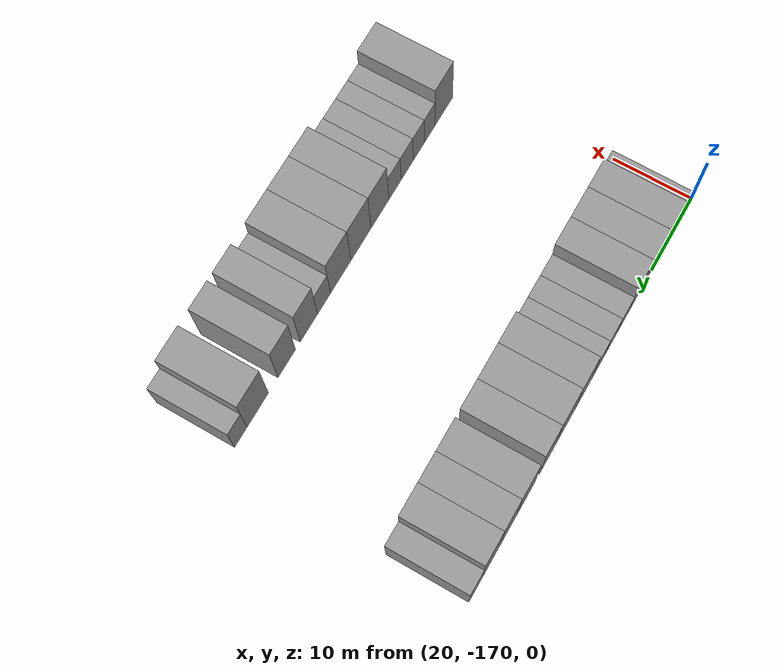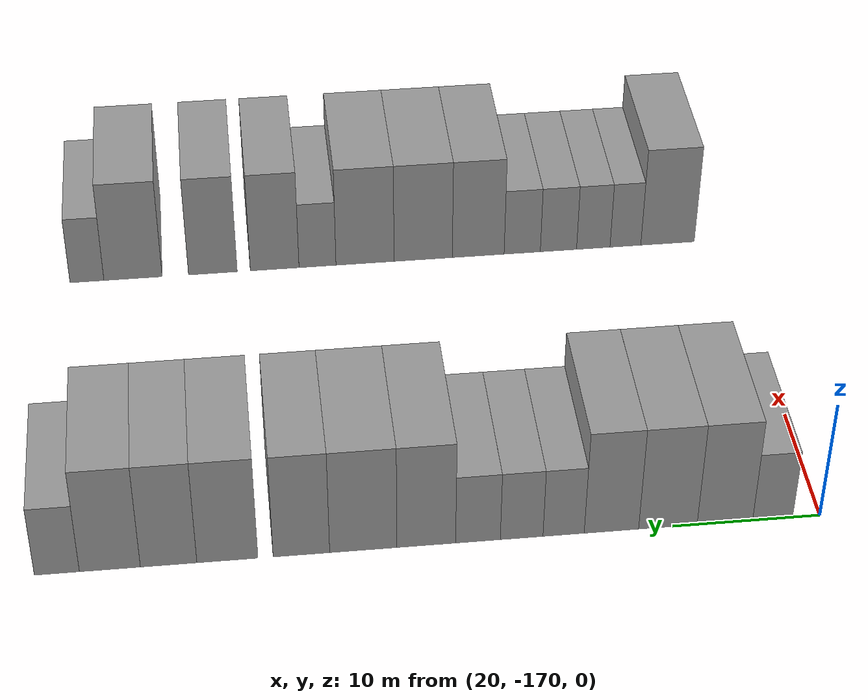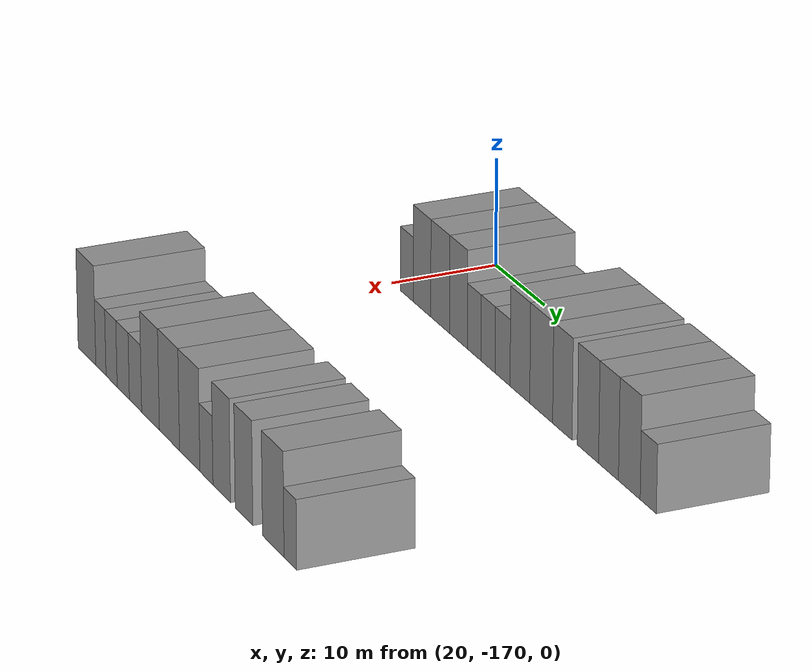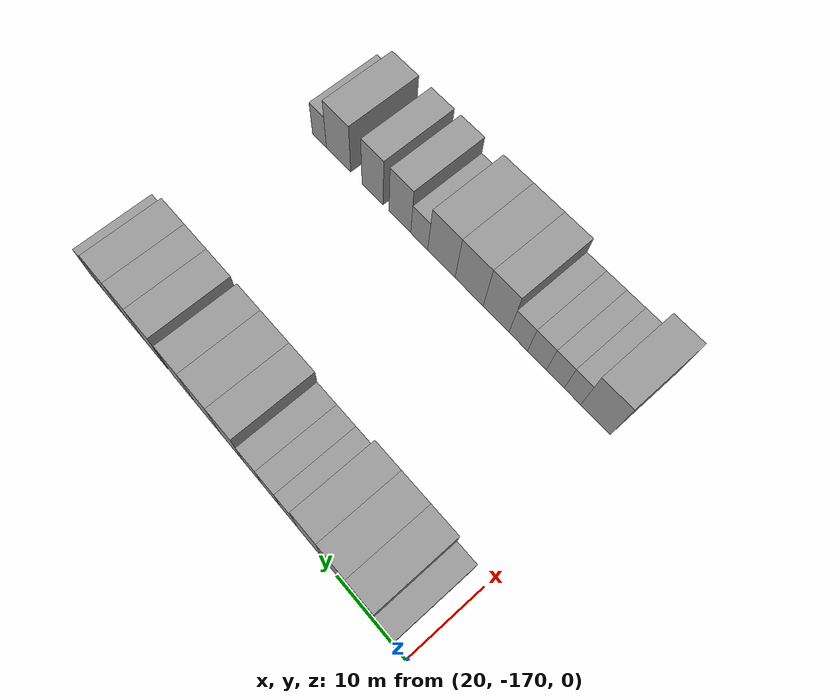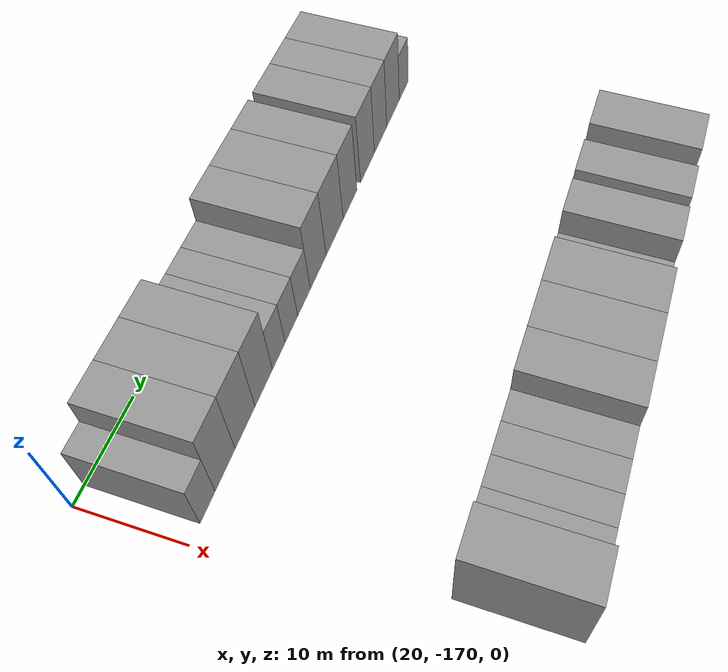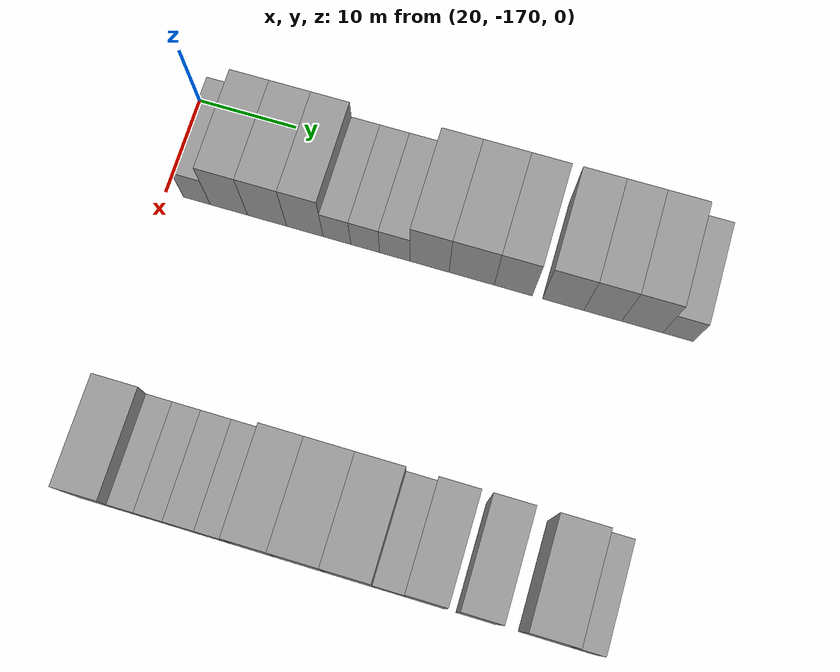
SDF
<sdf version="1.6">
 <world name="default">
  <model name="building_14">
   <static>1</static>
   <pose>25.0000 -166.7844 0 0.000000 0.000000 0.000000</pose>
   <link name="link">
    <pose>0 0 3.00 0 0 0</pose>
    <collision name="collision"><geometry><box><size>10.0000 2.7257 6.0000</size></box></geometry></collision>
    <visual name="visual">
     <cast_shadows>0</cast_shadows>
     <geometry><box><size>10.0000 2.7257 6.0000</size></box></geometry>
     <material>
      <script>
       <uri>model://grey_wall/materials/scripts</uri>
       <uri>model://grey_wall/materials/textures</uri>
       <name>vrc/grey_wall</name>
      </script>
     </material>
    </visual>
   </link>
  </model>
  <model name="building_15">
   <static>1</static>
   <pose>25.0000 -163.5337 0 0.000000 0.000000 0.000000</pose>
   <link name="link">
    <pose>0 0 4.50 0 0 0</pose>
    <collision name="collision"><geometry><box><size>10.0000 3.7757 9.0000</size></box></geometry></collision>
    <visual name="visual">
     <cast_shadows>0</cast_shadows>
     <geometry><box><size>10.0000 3.7757 9.0000</size></box></geometry>
     <material>
      <script>
       <uri>model://grey_wall/materials/scripts</uri>
       <uri>model://grey_wall/materials/textures</uri>
       <name>vrc/grey_wall</name>
      </script>
     </material>
    </visual>
   </link>
  </model>
  <model name="building_16">
   <static>1</static>
   <pose>25.0000 -159.6657 0 0.000000 0.000000 0.000000</pose>
   <link name="link">
    <pose>0 0 4.50 0 0 0</pose>
    <collision name="collision"><geometry><box><size>10.0000 3.9602 9.0000</size></box></geometry></collision>
    <visual name="visual">
     <cast_shadows>0</cast_shadows>
     <geometry><box><size>10.0000 3.9602 9.0000</size></box></geometry>
     <material>
      <script>
       <uri>model://grey_wall/materials/scripts</uri>
       <uri>model://grey_wall/materials/textures</uri>
       <name>vrc/grey_wall</name>
      </script>
     </material>
    </visual>
   </link>
  </model>
  <model name="building_17">
   <static>1</static>
   <pose>25.0000 -155.8524 0 0.000000 0.000000 0.000000</pose>
   <link name="link">
    <pose>0 0 4.50 0 0 0</pose>
    <collision name="collision"><geometry><box><size>10.0000 3.6663 9.0000</size></box></geometry></collision>
    <visual name="visual">
     <cast_shadows>0</cast_shadows>
     <geometry><box><size>10.0000 3.6663 9.0000</size></box></geometry>
     <material>
      <script>
       <uri>model://grey_wall/materials/scripts</uri>
       <uri>model://grey_wall/materials/textures</uri>
       <name>vrc/grey_wall</name>
      </script>
     </material>
    </visual>
   </link>
  </model>
  <model name="building_18">
   <static>1</static>
   <pose>25.0000 -152.6347 0 0.000000 0.000000 0.000000</pose>
   <link name="link">
    <pose>0 0 3.00 0 0 0</pose>
    <collision name="collision"><geometry><box><size>10.0000 2.7692 6.0000</size></box></geometry></collision>
    <visual name="visual">
     <cast_shadows>0</cast_shadows>
     <geometry><box><size>10.0000 2.7692 6.0000</size></box></geometry>
     <material>
      <script>
       <uri>model://grey_wall/materials/scripts</uri>
       <uri>model://grey_wall/materials/textures</uri>
       <name>vrc/grey_wall</name>
      </script>
     </material>
    </visual>
   </link>
  </model>
  <model name="building_19">
   <static>1</static>
   <pose>25.0000 -149.8208 0 0.000000 0.000000 0.000000</pose>
   <link name="link">
    <pose>0 0 3.00 0 0 0</pose>
    <collision name="collision"><geometry><box><size>10.0000 2.8584 6.0000</size></box></geometry></collision>
    <visual name="visual">
     <cast_shadows>0</cast_shadows>
     <geometry><box><size>10.0000 2.8584 6.0000</size></box></geometry>
     <material>
      <script>
       <uri>model://grey_wall/materials/scripts</uri>
       <uri>model://grey_wall/materials/textures</uri>
       <name>vrc/grey_wall</name>
      </script>
     </material>
    </visual>
   </link>
  </model>
  <model name="building_20">
   <static>1</static>
   <pose>25.0000 -146.8978 0 0.000000 0.000000 0.000000</pose>
   <link name="link">
    <pose>0 0 3.00 0 0 0</pose>
    <collision name="collision"><geometry><box><size>10.0000 2.9875 6.0000</size></box></geometry></collision>
    <visual name="visual">
     <cast_shadows>0</cast_shadows>
     <geometry><box><size>10.0000 2.9875 6.0000</size></box></geometry>
     <material>
      <script>
       <uri>model://grey_wall/materials/scripts</uri>
       <uri>model://grey_wall/materials/textures</uri>
       <name>vrc/grey_wall</name>
      </script>
     </material>
    </visual>
   </link>
  </model>
  <model name="building_21">
   <static>1</static>
   <pose>25.0000 -143.4549 0 0.000000 0.000000 0.000000</pose>
   <link name="link">
    <pose>0 0 4.50 0 0 0</pose>
    <collision name="collision"><geometry><box><size>10.0000 3.8983 9.0000</size></box></geometry></collision>
    <visual name="visual">
     <cast_shadows>0</cast_shadows>
     <geometry><box><size>10.0000 3.8983 9.0000</size></box></geometry>
     <material>
      <script>
       <uri>model://grey_wall/materials/scripts</uri>
       <uri>model://grey_wall/materials/textures</uri>
       <name>vrc/grey_wall</name>
      </script>
     </material>
    </visual>
   </link>
  </model>
  <model name="building_22">
   <static>1</static>
   <pose>25.0000 -139.2806 0 0.000000 0.000000 0.000000</pose>
   <link name="link">
    <pose>0 0 4.50 0 0 0</pose>
    <collision name="collision"><geometry><box><size>10.0000 4.4503 9.0000</size></box></geometry></collision>
    <visual name="visual">
     <cast_shadows>0</cast_shadows>
     <geometry><box><size>10.0000 4.4503 9.0000</size></box></geometry>
     <material>
      <script>
       <uri>model://grey_wall/materials/scripts</uri>
       <uri>model://grey_wall/materials/textures</uri>
       <name>vrc/grey_wall</name>
      </script>
     </material>
    </visual>
   </link>
  </model>
  <model name="building_23">
   <static>1</static>
   <pose>25.0000 -135.1921 0 0.000000 0.000000 0.000000</pose>
   <link name="link">
    <pose>0 0 4.50 0 0 0</pose>
    <collision name="collision"><geometry><box><size>10.0000 3.7267 9.0000</size></box></geometry></collision>
    <visual name="visual">
     <cast_shadows>0</cast_shadows>
     <geometry><box><size>10.0000 3.7267 9.0000</size></box></geometry>
     <material>
      <script>
       <uri>model://grey_wall/materials/scripts</uri>
       <uri>model://grey_wall/materials/textures</uri>
       <name>vrc/grey_wall</name>
      </script>
     </material>
    </visual>
   </link>
  </model>
  <model name="building_24">
   <static>1</static>
   <pose>25.0000 -130.3292 0 0.000000 0.000000 0.000000</pose>
   <link name="link">
    <pose>0 0 4.50 0 0 0</pose>
    <collision name="collision"><geometry><box><size>10.0000 3.9993 9.0000</size></box></geometry></collision>
    <visual name="visual">
     <cast_shadows>0</cast_shadows>
     <geometry><box><size>10.0000 3.9993 9.0000</size></box></geometry>
     <material>
      <script>
       <uri>model://grey_wall/materials/scripts</uri>
       <uri>model://grey_wall/materials/textures</uri>
       <name>vrc/grey_wall</name>
      </script>
     </material>
    </visual>
   </link>
  </model>
  <model name="building_25">
   <static>1</static>
   <pose>25.0000 -126.4850 0 0.000000 0.000000 0.000000</pose>
   <link name="link">
    <pose>0 0 4.50 0 0 0</pose>
    <collision name="collision"><geometry><box><size>10.0000 3.6889 9.0000</size></box></geometry></collision>
    <visual name="visual">
     <cast_shadows>0</cast_shadows>
     <geometry><box><size>10.0000 3.6889 9.0000</size></box></geometry>
     <material>
      <script>
       <uri>model://grey_wall/materials/scripts</uri>
       <uri>model://grey_wall/materials/textures</uri>
       <name>vrc/grey_wall</name>
      </script>
     </material>
    </visual>
   </link>
  </model>
  <model name="building_26">
   <static>1</static>
   <pose>25.0000 -122.6593 0 0.000000 0.000000 0.000000</pose>
   <link name="link">
    <pose>0 0 4.50 0 0 0</pose>
    <collision name="collision"><geometry><box><size>10.0000 3.9626 9.0000</size></box></geometry></collision>
    <visual name="visual">
     <cast_shadows>0</cast_shadows>
     <geometry><box><size>10.0000 3.9626 9.0000</size></box></geometry>
     <material>
      <script>
       <uri>model://grey_wall/materials/scripts</uri>
       <uri>model://grey_wall/materials/textures</uri>
       <name>vrc/grey_wall</name>
      </script>
     </material>
    </visual>
   </link>
  </model>
  <model name="building_27">
   <static>1</static>
   <pose>25.0000 -119.2190 0 0.000000 0.000000 0.000000</pose>
   <link name="link">
    <pose>0 0 3.00 0 0 0</pose>
    <collision name="collision"><geometry><box><size>10.0000 2.9181 6.0000</size></box></geometry></collision>
    <visual name="visual">
     <cast_shadows>0</cast_shadows>
     <geometry><box><size>10.0000 2.9181 6.0000</size></box></geometry>
     <material>
      <script>
       <uri>model://grey_wall/materials/scripts</uri>
       <uri>model://grey_wall/materials/textures</uri>
       <name>vrc/grey_wall</name>
      </script>
     </material>
    </visual>
   </link>
  </model>
  <model name="building_128">
   <static>1</static>
   <pose>55.0000 -165.4883 0 0.000000 0.000000 0.000000</pose>
   <link name="link">
    <pose>0 0 4.50 0 0 0</pose>
    <collision name="collision"><geometry><box><size>10.0000 4.1902 9.0000</size></box></geometry></collision>
    <visual name="visual">
     <cast_shadows>0</cast_shadows>
     <geometry><box><size>10.0000 4.1902 9.0000</size></box></geometry>
     <material>
      <script>
       <uri>model://grey_wall/materials/scripts</uri>
       <uri>model://grey_wall/materials/textures</uri>
       <name>vrc/grey_wall</name>
      </script>
     </material>
    </visual>
   </link>
  </model>
  <model name="building_129">
   <static>1</static>
   <pose>55.0000 -162.1886 0 0.000000 0.000000 0.000000</pose>
   <link name="link">
    <pose>0 0 3.00 0 0 0</pose>
    <collision name="collision"><geometry><box><size>10.0000 2.4093 6.0000</size></box></geometry></collision>
    <visual name="visual">
     <cast_shadows>0</cast_shadows>
     <geometry><box><size>10.0000 2.4093 6.0000</size></box></geometry>
     <material>
      <script>
       <uri>model://grey_wall/materials/scripts</uri>
       <uri>model://grey_wall/materials/textures</uri>
       <name>vrc/grey_wall</name>
      </script>
     </material>
    </visual>
   </link>
  </model>
  <model name="building_130">
   <static>1</static>
   <pose>55.0000 -159.6796 0 0.000000 0.000000 0.000000</pose>
   <link name="link">
    <pose>0 0 3.00 0 0 0</pose>
    <collision name="collision"><geometry><box><size>10.0000 2.6088 6.0000</size></box></geometry></collision>
    <visual name="visual">
     <cast_shadows>0</cast_shadows>
     <geometry><box><size>10.0000 2.6088 6.0000</size></box></geometry>
     <material>
      <script>
       <uri>model://grey_wall/materials/scripts</uri>
       <uri>model://grey_wall/materials/textures</uri>
       <name>vrc/grey_wall</name>
      </script>
     </material>
    </visual>
   </link>
  </model>
  <model name="building_131">
   <static>1</static>
   <pose>55.0000 -156.9634 0 0.000000 0.000000 0.000000</pose>
   <link name="link">
    <pose>0 0 3.00 0 0 0</pose>
    <collision name="collision"><geometry><box><size>10.0000 2.8235 6.0000</size></box></geometry></collision>
    <visual name="visual">
     <cast_shadows>0</cast_shadows>
     <geometry><box><size>10.0000 2.8235 6.0000</size></box></geometry>
     <material>
      <script>
       <uri>model://grey_wall/materials/scripts</uri>
       <uri>model://grey_wall/materials/textures</uri>
       <name>vrc/grey_wall</name>
      </script>
     </material>
    </visual>
   </link>
  </model>
  <model name="building_132">
   <static>1</static>
   <pose>55.0000 -154.1457 0 0.000000 0.000000 0.000000</pose>
   <link name="link">
    <pose>0 0 3.00 0 0 0</pose>
    <collision name="collision"><geometry><box><size>10.0000 2.8119 6.0000</size></box></geometry></collision>
    <visual name="visual">
     <cast_shadows>0</cast_shadows>
     <geometry><box><size>10.0000 2.8119 6.0000</size></box></geometry>
     <material>
      <script>
       <uri>model://grey_wall/materials/scripts</uri>
       <uri>model://grey_wall/materials/textures</uri>
       <name>vrc/grey_wall</name>
      </script>
     </material>
    </visual>
   </link>
  </model>
  <model name="building_133">
   <static>1</static>
   <pose>55.0000 -150.7328 0 0.000000 0.000000 0.000000</pose>
   <link name="link">
    <pose>0 0 4.50 0 0 0</pose>
    <collision name="collision"><geometry><box><size>10.0000 4.0139 9.0000</size></box></geometry></collision>
    <visual name="visual">
     <cast_shadows>0</cast_shadows>
     <geometry><box><size>10.0000 4.0139 9.0000</size></box></geometry>
     <material>
      <script>
       <uri>model://grey_wall/materials/scripts</uri>
       <uri>model://grey_wall/materials/textures</uri>
       <name>vrc/grey_wall</name>
      </script>
     </material>
    </visual>
   </link>
  </model>
  <model name="building_134">
   <static>1</static>
   <pose>55.0000 -146.4838 0 0.000000 0.000000 0.000000</pose>
   <link name="link">
    <pose>0 0 4.50 0 0 0</pose>
    <collision name="collision"><geometry><box><size>10.0000 4.4842 9.0000</size></box></geometry></collision>
    <visual name="visual">
     <cast_shadows>0</cast_shadows>
     <geometry><box><size>10.0000 4.4842 9.0000</size></box></geometry>
     <material>
      <script>
       <uri>model://grey_wall/materials/scripts</uri>
       <uri>model://grey_wall/materials/textures</uri>
       <name>vrc/grey_wall</name>
      </script>
     </material>
    </visual>
   </link>
  </model>
  <model name="building_135">
   <static>1</static>
   <pose>55.0000 -142.0125 0 0.000000 0.000000 0.000000</pose>
   <link name="link">
    <pose>0 0 4.50 0 0 0</pose>
    <collision name="collision"><geometry><box><size>10.0000 4.4585 9.0000</size></box></geometry></collision>
    <visual name="visual">
     <cast_shadows>0</cast_shadows>
     <geometry><box><size>10.0000 4.4585 9.0000</size></box></geometry>
     <material>
      <script>
       <uri>model://grey_wall/materials/scripts</uri>
       <uri>model://grey_wall/materials/textures</uri>
       <name>vrc/grey_wall</name>
      </script>
     </material>
    </visual>
   </link>
  </model>
  <model name="building_136">
   <static>1</static>
   <pose>55.0000 -138.3709 0 0.000000 0.000000 0.000000</pose>
   <link name="link">
    <pose>0 0 3.00 0 0 0</pose>
    <collision name="collision"><geometry><box><size>10.0000 2.8247 6.0000</size></box></geometry></collision>
    <visual name="visual">
     <cast_shadows>0</cast_shadows>
     <geometry><box><size>10.0000 2.8247 6.0000</size></box></geometry>
     <material>
      <script>
       <uri>model://grey_wall/materials/scripts</uri>
       <uri>model://grey_wall/materials/textures</uri>
       <name>vrc/grey_wall</name>
      </script>
     </material>
    </visual>
   </link>
  </model>
  <model name="building_137">
   <static>1</static>
   <pose>55.0000 -135.1018 0 0.000000 0.000000 0.000000</pose>
   <link name="link">
    <pose>0 0 4.50 0 0 0</pose>
    <collision name="collision"><geometry><box><size>10.0000 3.7133 9.0000</size></box></geometry></collision>
    <visual name="visual">
     <cast_shadows>0</cast_shadows>
     <geometry><box><size>10.0000 3.7133 9.0000</size></box></geometry>
     <material>
      <script>
       <uri>model://grey_wall/materials/scripts</uri>
       <uri>model://grey_wall/materials/textures</uri>
       <name>vrc/grey_wall</name>
      </script>
     </material>
    </visual>
   </link>
  </model>
  <model name="building_138">
   <static>1</static>
   <pose>55.0000 -130.3985 0 0.000000 0.000000 0.000000</pose>
   <link name="link">
    <pose>0 0 4.50 0 0 0</pose>
    <collision name="collision"><geometry><box><size>10.0000 3.6933 9.0000</size></box></geometry></collision>
    <visual name="visual">
     <cast_shadows>0</cast_shadows>
     <geometry><box><size>10.0000 3.6933 9.0000</size></box></geometry>
     <material>
      <script>
       <uri>model://grey_wall/materials/scripts</uri>
       <uri>model://grey_wall/materials/textures</uri>
       <name>vrc/grey_wall</name>
      </script>
     </material>
    </visual>
   </link>
  </model>
  <model name="building_139">
   <static>1</static>
   <pose>55.0000 -124.3555 0 0.000000 0.000000 0.000000</pose>
   <link name="link">
    <pose>0 0 4.50 0 0 0</pose>
    <collision name="collision"><geometry><box><size>10.0000 4.3927 9.0000</size></box></geometry></collision>
    <visual name="visual">
     <cast_shadows>0</cast_shadows>
     <geometry><box><size>10.0000 4.3927 9.0000</size></box></geometry>
     <material>
      <script>
       <uri>model://grey_wall/materials/scripts</uri>
       <uri>model://grey_wall/materials/textures</uri>
       <name>vrc/grey_wall</name>
      </script>
     </material>
    </visual>
   </link>
  </model>
  <model name="building_140">
   <static>1</static>
   <pose>55.0000 -120.8831 0 0.000000 0.000000 0.000000</pose>
   <link name="link">
    <pose>0 0 3.00 0 0 0</pose>
    <collision name="collision"><geometry><box><size>10.0000 2.5522 6.0000</size></box></geometry></collision>
    <visual name="visual">
     <cast_shadows>0</cast_shadows>
     <geometry><box><size>10.0000 2.5522 6.0000</size></box></geometry>
     <material>
      <script>
       <uri>model://grey_wall/materials/scripts</uri>
       <uri>model://grey_wall/materials/textures</uri>
       <name>vrc/grey_wall</name>
      </script>
     </material>
    </visual>
   </link>
  </model>
 </world>
</sdf>
